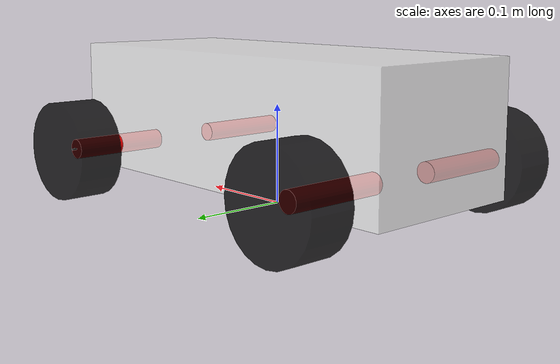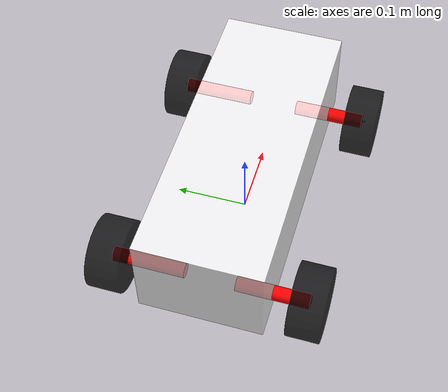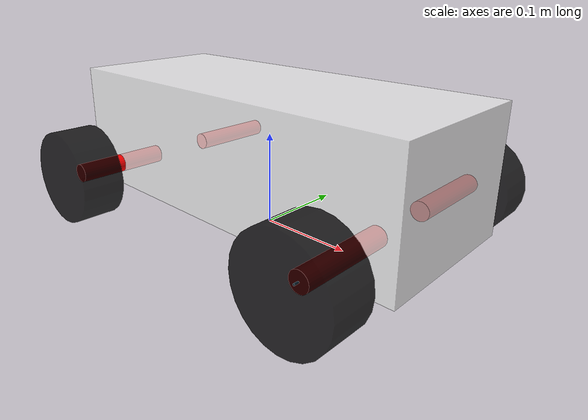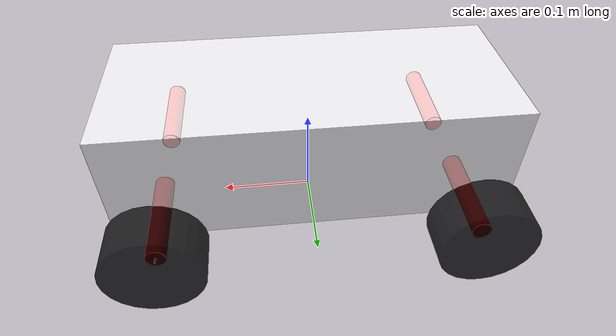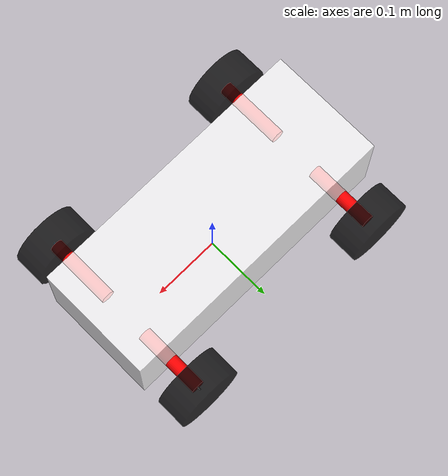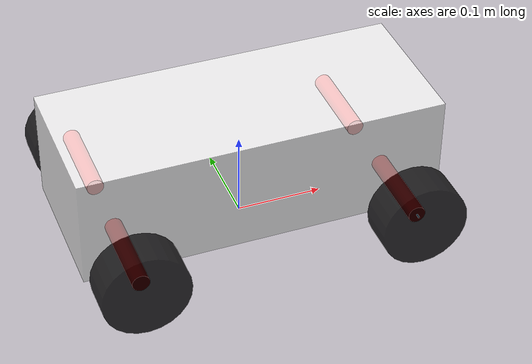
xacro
<?xml version="1.0"?>

<!-- This is the main structure of the robot. it has links, joints and material properties-->
<robot xmlns:xacro="http://ros.org/wiki/xacro">

  <!--xacro:property name="pi" value="3.14159" /-->

  <xacro:include filename="materials.xacro" />
  <xacro:include filename="robot_physical_properties.xacro" />
  <xacro:include filename="inertial_macros.xacro" />

    <link name="base_footprint">
    </link>

    <!-- chassis link of the robot -->
    <joint name="base_joint" type="fixed">
        <parent link="base_footprint" />
        <child link="base_link" />
        <origin xyz="0 0 ${base_height/2+wheel_radius/2}" rpy="0 0 0" />
    </joint>

    <link name="base_link">
        <visual>
            <origin xyz="0 0 0" rpy="0 0 0"/>
            <geometry>
                <box size="${base_length} ${base_width} ${base_height}" />
            </geometry>
            <material name="white"/>
        </visual>
        <collision>
            <origin xyz="0 0 0" rpy="0 0 0"/>
            <geometry>
                <box size="${base_length} ${base_width} ${base_height}" />
            </geometry>
        </collision>
        <xacro:inertial_box mass="${base_mass}" x="${base_length}" y="${base_width}" z="${base_height}">
            <origin xyz="0 0 0" rpy="0 0 0"/>
        </xacro:inertial_box>
    </link>

    <link name="front_left_wheel_connector">
        <visual>
            <origin xyz="0 0 0" rpy="0 0 0" />
            <geometry>
                <cylinder radius="${wheel_connector_radius}" length="${wheel_connector_length}" />
            </geometry>
            <material name="red"/>
        </visual>
    <collision>
      <origin xyz="0 0 0" rpy="0 0 0" />
      <geometry>
        <cylinder radius="${wheel_connector_radius}" length="${wheel_connector_length}" />
      </geometry>
    </collision>
    <xacro:inertial_cylinder mass="${wheel_connector_mass}" length="${wheel_connector_length}" radius="${wheel_connector_radius}">
      <origin xyz="0 0 0" rpy="0 0 0"/>
    </xacro:inertial_cylinder>
  </link>

  <link name="front_right_wheel_connector">
    <visual>
      <origin xyz="0 0 0" rpy="0 0 0" />
      <geometry>
        <cylinder radius="${wheel_connector_radius}" length="${wheel_connector_length}" />
      </geometry>
      <material name="red"/>
    </visual>
    <collision>
      <origin xyz="0 0 0" rpy="0 0 0" />
      <geometry>
        <cylinder radius="${wheel_connector_radius}" length="${wheel_connector_length}" />
      </geometry>
    </collision>
    <xacro:inertial_cylinder mass="${wheel_connector_mass}" length="${wheel_connector_length}" radius="${wheel_connector_radius}">
      <origin xyz="0 0 0" rpy="0 0 0"/>
    </xacro:inertial_cylinder>
  </link>

  <link name="rear_left_wheel_connector">
    <visual>
      <origin xyz="0 0 0" rpy="0 0 0" />
      <geometry>
        <cylinder radius="${wheel_connector_radius}" length="${wheel_connector_length}" />
      </geometry>
      <material name="red"/>
    </visual>
    <collision>
      <origin xyz="0 0 0" rpy="0 0 0" />
      <geometry>
        <cylinder radius="${wheel_connector_radius}" length="${wheel_connector_length}" />
      </geometry>
    </collision>
    <xacro:inertial_cylinder mass="${wheel_connector_mass}" length="${wheel_connector_length}" radius="${wheel_connector_radius}">
      <origin xyz="0 0 0" rpy="0 0 0"/>
    </xacro:inertial_cylinder>
  </link>

  <link name="rear_right_wheel_connector">
    <visual>
      <origin xyz="0 0 0" rpy="0 0 0" />
      <geometry>
        <cylinder radius="${wheel_connector_radius}" length="${wheel_connector_length}" />
      </geometry>
      <material name="red"/>
    </visual>
    <collision>
      <origin xyz="0 0 0" rpy="0 0 0" />
      <geometry>
        <cylinder radius="${wheel_connector_radius}" length="${wheel_connector_length}" />
      </geometry>
    </collision>
    <xacro:inertial_cylinder mass="${wheel_connector_mass}" length="${wheel_connector_length}" radius="${wheel_connector_radius}">
      <origin xyz="0 0 0" rpy="0 0 0"/>
    </xacro:inertial_cylinder>
  </link>

<!-- Front left wheel -->
  <link name="front_left_wheel_link">
    <visual>
      <origin xyz="0 0 0" rpy="0 0 0"/>
      <geometry>
        <cylinder radius="${wheel_radius}" length="${wheel_length}" />
      </geometry>
      <material name="black"/>
    </visual>
    <collision>
      <origin xyz="0 0 0" rpy="0 0 0"/>
      <geometry>
        <cylinder radius="${wheel_radius}" length="${wheel_length}" />
      </geometry>
    </collision>
    <xacro:inertial_cylinder mass="${wheel_mass}" length="${wheel_length}" radius="${wheel_radius}">
      <origin xyz="0 0 0" rpy="0 0 0"/>
    </xacro:inertial_cylinder>
  </link>

  <!-- Front left wheel steering -->
  <link name="front_left_steering_link">
    <visual>
      <origin xyz="0 0 0" rpy="0 0 0" />
      <geometry>
        <cylinder radius="0.001" length="0.01" />
      </geometry>
    </visual>
    <collision>
      <origin xyz="0 0 0" rpy="0 0 0" />
      <geometry>
        <cylinder radius="0.001" length="0.01" />
      </geometry>
    </collision>
    <xacro:inertial_cylinder mass="0.001" length="0.001" radius="0.01">
      <origin xyz="0 0 0" rpy="0 0 0"/>
    </xacro:inertial_cylinder>
  </link>

  <!-- Front right wheel -->
  <link name="front_right_wheel_link">
    <visual>
      <origin xyz="0 0 0" rpy="0 0 0"/>
      <geometry>
        <cylinder radius="${wheel_radius}" length="${wheel_length}" />
      </geometry>
      <material name="black"/>
    </visual>
    <collision>
      <origin xyz="0 0 0" rpy="0 0 0"/>
      <geometry>
        <cylinder radius="${wheel_radius}" length="${wheel_length}" />
      </geometry>
    </collision>
    <xacro:inertial_cylinder mass="${wheel_mass}" length="${wheel_length}" radius="${wheel_radius}">
      <origin xyz="0 0 0" rpy="0 0 0"/>
    </xacro:inertial_cylinder>
  </link>

  <!-- Front right wheel steering -->
  <link name="front_right_steering_link">
    <visual>
      <origin xyz="0 0 0" rpy="0 0 0" />
      <geometry>
        <cylinder radius="0.001" length="0.01" />
      </geometry>
    </visual>
    <collision>
      <origin xyz="0 0 0" rpy="0 0 0" />
      <geometry>
        <cylinder radius="0.001" length="0.01" />
      </geometry>
    </collision>
    <xacro:inertial_cylinder mass="0.001" length="0.001" radius="0.01">
      <origin xyz="0 0 0" rpy="0 0 0"/>
    </xacro:inertial_cylinder>
  </link>

  <!-- Rear Left Wheel-->
  <link name="rear_left_wheel_link">
    <visual>
      <origin xyz="0 0 0" rpy="0 0 0"/>
      <geometry>
        <cylinder radius="${wheel_radius}" length="${wheel_length}" />
      </geometry>
      <material name="black"/>
    </visual>
    <collision>
      <origin xyz="0 0 0" rpy="0 0 0"/>
      <geometry>
        <cylinder radius="${wheel_radius}" length="${wheel_length}" />
      </geometry>
    </collision>
    <xacro:inertial_cylinder mass="${wheel_mass}" length="${wheel_length}" radius="${wheel_radius}">
      <origin xyz="0 0 0" rpy="0 0 0"/>
    </xacro:inertial_cylinder>
  </link>

  <!-- Rear right wheel -->
  <link name="rear_right_wheel_link">
    <visual>
      <origin xyz="0 0 0" rpy="0 0 0"/>
      <geometry>
        <cylinder radius="${wheel_radius}" length="${wheel_length}" />
      </geometry>
      <material name="black"/>
    </visual>
    <collision>
      <origin xyz="0 0 0" rpy="0 0 0"/>
      <geometry>
        <cylinder radius="${wheel_radius}" length="${wheel_length}" />
      </geometry>
    </collision>
    <xacro:inertial_cylinder mass="${wheel_mass}" length="${wheel_length}" radius="${wheel_radius}">
      <origin xyz="0 0 0" rpy="0 0 0"/>
    </xacro:inertial_cylinder>
  </link>

  <!--Joints-->

  <joint name="front_left_wheel_connector_joint" type="fixed">
    <parent link="base_link" />
    <child link="front_left_wheel_connector" />
    <origin xyz="${base_length/2-0.05} ${base_width/2} -${wheel_radius-wheel_connector_radius}" rpy="-${3.1459/2} 0 0" />
  </joint>

  <joint name="front_left_steering_joint" type="revolute">
    <parent link="front_left_wheel_connector" />
    <child link="front_left_steering_link" />
    <origin xyz="0 0 ${wheel_connector_length/2}" rpy="0 0 0" />
    <axis xyz="0 1 0" />
    <limit lower="-1.0" upper="1.0" effort="100" velocity="100" />
  </joint>

  <joint name="front_left_wheel_joint" type="continuous">
    <parent link="front_left_steering_link" />
    <child link="front_left_wheel_link" />
    <origin xyz="0 0 0" rpy="0 0 0" />
    <axis xyz="0 0 1" />
    <limit effort="100" velocity="100" />
  </joint>

  <joint name="front_right_wheel_connector_joint" type="fixed">
    <parent link="base_link" />
    <child link="front_right_wheel_connector" />
    <origin xyz="${base_length/2-0.05} -${base_width/2} -${wheel_radius-wheel_connector_radius}" rpy="-${3.1459/2} 0 0" />
  </joint>

  <joint name="front_right_steering_joint" type="revolute">
    <parent link="front_right_wheel_connector" />
    <child link="front_right_steering_link" />
    <origin xyz="0 0 -${wheel_connector_length/2}" rpy="0 0 0" />
    <axis xyz="0 1 0" />
    <limit lower="-1.0" upper="1.0" effort="100" velocity="100" />
  </joint>

  <joint name="front_right_wheel_joint" type="continuous">
    <parent link="front_right_steering_link" />
    <child link="front_right_wheel_link" />
    <origin xyz="0 0 0" rpy="0 0 0" />
    <axis xyz="0 0 1" />
    <limit effort="100" velocity="100" />
  </joint>

  <joint name="rear_left_wheel_connector_joint" type="fixed">
    <parent link="base_link" />
    <child link="rear_left_wheel_connector" />
    <origin xyz="-${base_length/2-0.05} ${base_width/2} -${wheel_radius-wheel_connector_radius}" rpy="-${3.1459/2} 0 0" />
  </joint>

  <joint name="rear_right_wheel_connector_joint" type="fixed">
    <parent link="base_link" />
    <child link="rear_right_wheel_connector" />
    <origin xyz="-${base_length/2-0.05} -${base_width/2} -${wheel_radius-wheel_connector_radius}" rpy="-${3.1459/2} 0 0" />
  </joint>

  <joint name="rear_left_wheel_joint" type="continuous">
    <parent link="rear_left_wheel_connector" />
    <child link="rear_left_wheel_link" />
    <origin xyz="0 0 ${wheel_connector_length/2}" rpy="0 0 0" />
    <axis xyz="0 0 1" />
    <limit effort="100" velocity="100" />
  </joint>

  <joint name="rear_right_wheel_joint" type="continuous">
    <parent link="rear_right_wheel_connector" />
    <child link="rear_right_wheel_link" />
    <origin xyz="0 0 -${wheel_connector_length/2}" rpy="0 0 0" />
    <axis xyz="0 0 1" />
    <limit effort="100" velocity="100" />
  </joint>

</robot>

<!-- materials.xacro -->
<robot xmlns:xacro="http://ros.org/wiki/xacro">

  <material name="black">
    <color rgba=" 0 0 0 0.8" />
  </material>

  <material name="white">
    <color rgba=" 1 1 1 0.8" />
  </material>

  <material name="red">
    <color rgba=" 1 0 0 1" />
  </material>

  <material name="green">
    <color rgba=" 0 1 0 1" />
  </material>

  <material name="blue">
    <color rgba=" 0 0 1 1" />
  </material>

  <material name="grey">
    <color rgba="0.25 0.25 0.25 1.0" />
  </material>

</robot>

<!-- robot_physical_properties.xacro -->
<robot xmlns:xacro="http://ros.org/wiki/xacro">

    <!-- Constants for robot dimensions -->

    <xacro:property name="base_mass" value="4.0" />
    <xacro:property name="base_width" value="0.17" />
    <xacro:property name="base_length" value="0.42" />
    <xacro:property name="base_height" value="0.13" />

    <xacro:property name="wheel_mass" value="0.3" />
    <xacro:property name="wheel_length" value="0.045" />
    <xacro:property name="wheel_radius" value="0.05" />

    <xacro:property name="wheel_connector_length" value="0.1" />
    <xacro:property name="wheel_connector_radius" value="0.01" />
    <xacro:property name="wheel_connector_mass" value="0.01" />
</robot>
